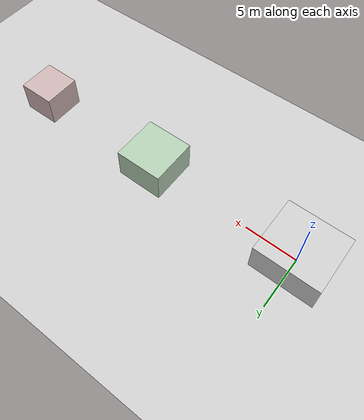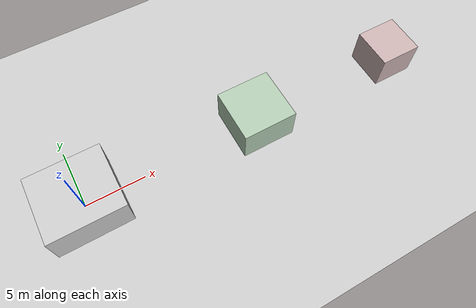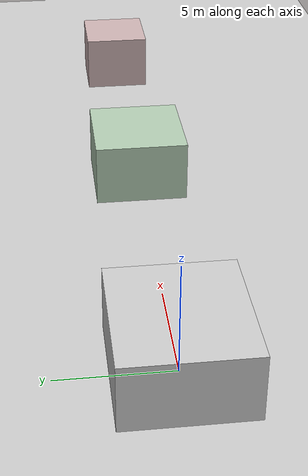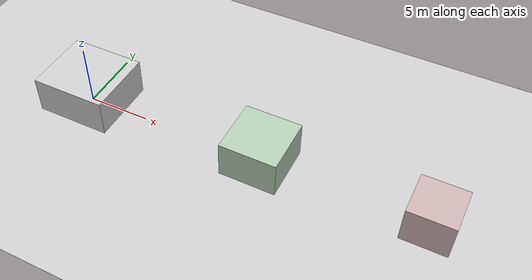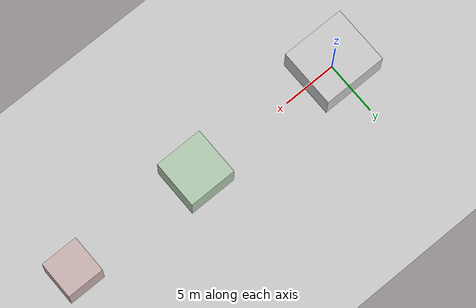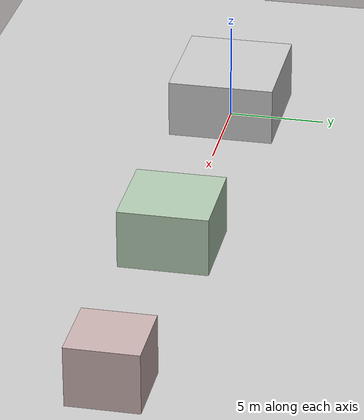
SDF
<?xml version="1.0"?>
<sdf version="1.6">
  <world name="room_test">
    <physics type="ode">
      <real_time_update_rate>1000.0</real_time_update_rate>
      <max_step>0.001</max_step>
      <real_time_factor>1</real_time_factor>
    </physics>

    <scene>
      <ambient>0.6 0.6 0.6 1</ambient>
      <background>0.7 0.7 0.7 1</background>
      <shadows>true</shadows>
    </scene>

    <include>
      <uri>model://sun</uri>
    </include>

    <include>
      <uri>model://ground_plane</uri>
    </include>

    <!-- 33平米房间（简化为盒子，约6m x 5.5m） -->
    <model name="room_33">
      <static>true</static>
      <pose>0 0 1.5 0 0 0</pose>
      <link name="link">
        <visual name="visual">
          <geometry>
            <box>
              <size>6 5.5 3</size>
            </box>
          </geometry>
          <material>
            <ambient>0.8 0.8 0.8 1</ambient>
            <diffuse>0.8 0.8 0.8 1</diffuse>
          </material>
        </visual>
        <collision name="collision">
          <geometry>
            <box>
              <size>6 5.5 3</size>
            </box>
          </geometry>
        </collision>
      </link>
    </model>

    <!-- 20平米房间（约4.5m x 4.5m） -->
    <model name="room_20">
      <static>true</static>
      <pose>15 0 1.5 0 0 0</pose>
      <link name="link">
        <visual name="visual">
          <geometry>
            <box>
              <size>4.5 4.5 3</size>
            </box>
          </geometry>
          <material>
            <ambient>0.7 0.8 0.7 1</ambient>
            <diffuse>0.7 0.8 0.7 1</diffuse>
          </material>
        </visual>
        <collision name="collision">
          <geometry>
            <box>
              <size>4.5 4.5 3</size>
            </box>
          </geometry>
        </collision>
      </link>
    </model>

    <!-- 12平米房间（约3.5m x 3.5m） -->
    <model name="room_12">
      <static>true</static>
      <pose>28 0 1.5 0 0 0</pose>
      <link name="link">
        <visual name="visual">
          <geometry>
            <box>
              <size>3.5 3.5 3</size>
            </box>
          </geometry>
          <material>
            <ambient>0.8 0.7 0.7 1</ambient>
            <diffuse>0.8 0.7 0.7 1</diffuse>
          </material>
        </visual>
        <collision name="collision">
          <geometry>
            <box>
              <size>3.5 3.5 3</size>
            </box>
          </geometry>
        </collision>
      </link>
    </model>

    <plugin name="gazebo_ros_init" filename="libgazebo_ros_init.so"/>
    <plugin name="gazebo_ros_factory" filename="libgazebo_ros_factory.so"/>
    <plugin name="gazebo_ros_state" filename="libgazebo_ros_state.so"/>
  </world>
</sdf>
